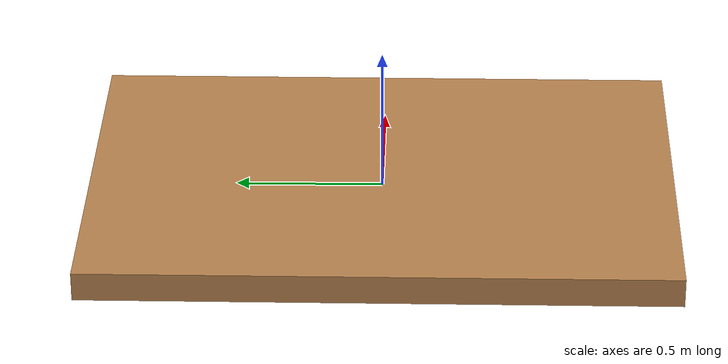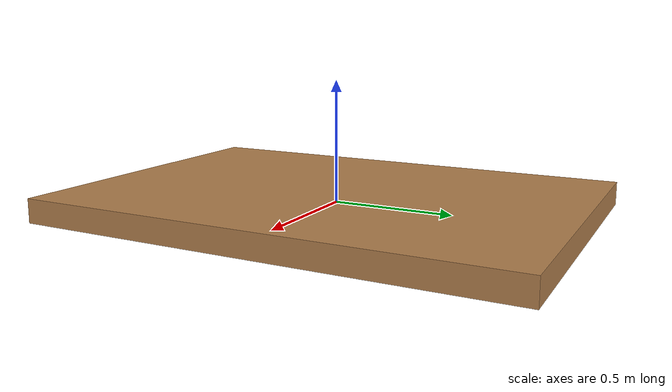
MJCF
<mujoco model="table">
    <compiler angle="radian" autolimits="true"/>
    <option impratio="10" />
    <default>
        <default class="visual">
            <geom type="mesh" contype="0" conaffinity="0" group="2" />
        </default>
        <default class="collision">
            <geom type="mesh" group="3" condim="3"
                friction="0.15 0.003 0.0001" solref="0.015 2.0"
                solimp="0.85 0.95 0.004" margin="0.0005" priority="20" />
        </default>
    </default>

    <asset>
        <texture name="wood" file="wood4.png"/>
        <material name="table" rgba="1 1 1 1" reflectance="0" specular="0.0" texture="wood"
            shininess="0" />
    </asset>
    <worldbody>
        <body name="table">
            <geom size="0.7 1 0.05" class="visual" type="box"
                material="table" />
            <geom name="table_surface" size="0.7 1 0.05"
                class="collision" type="box" />
        </body>
    </worldbody>
</mujoco>
